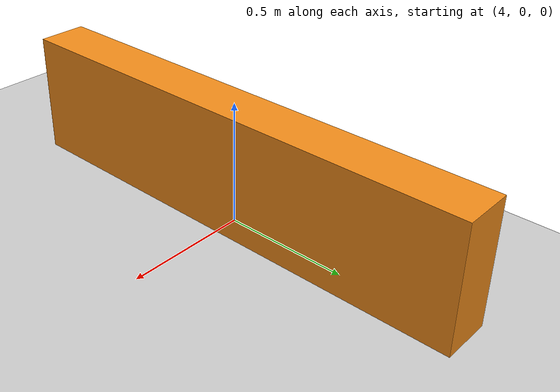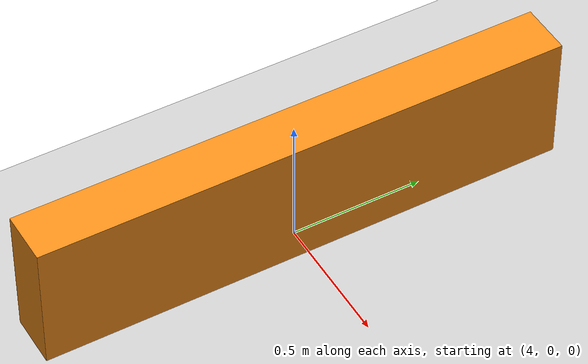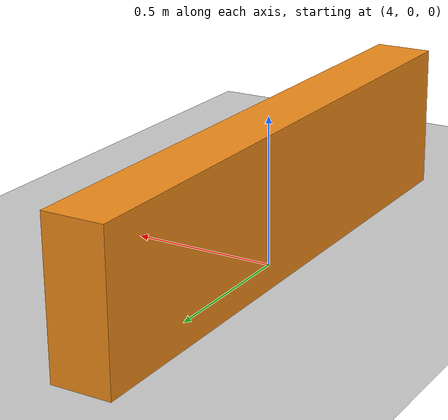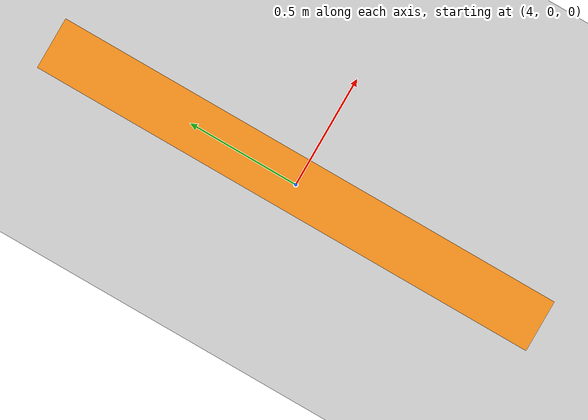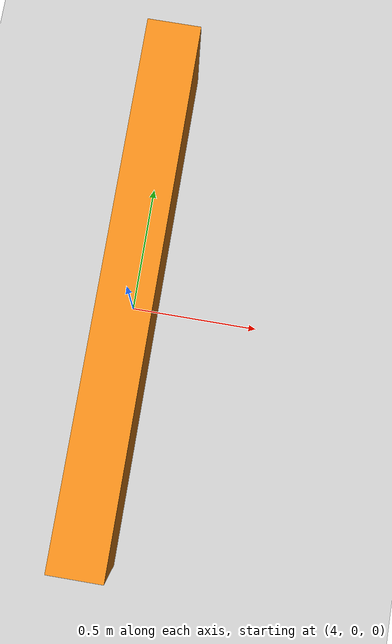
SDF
<?xml version="1.0"?>
<!--
  Simple Gazebo world for RC car simulation.
-->
<sdf version="1.6">
  <world name="rc_car_world">

    <!-- Gazebo Sim systems required for runtime services/topics -->
    <plugin
      filename="gz-sim-physics-system"
      name="gz::sim::systems::Physics" />
    <plugin
      filename="gz-sim-user-commands-system"
      name="gz::sim::systems::UserCommands" />
    <plugin
      filename="gz-sim-scene-broadcaster-system"
      name="gz::sim::systems::SceneBroadcaster" />
    <plugin
      filename="gz-sim-sensors-system"
      name="gz::sim::systems::Sensors">
      <render_engine>ogre2</render_engine>
    </plugin>

    <!-- Physics -->
    <physics name="default" type="ode">
      <max_step_size>0.001</max_step_size>
      <real_time_factor>1</real_time_factor>
      <real_time_update_rate>1000</real_time_update_rate>
    </physics>

    <!-- Lighting -->
    <light name="sun" type="directional">
      <cast_shadows>true</cast_shadows>
      <pose>0 0 10 0 0 0</pose>
      <diffuse>0.8 0.8 0.8 1</diffuse>
      <specular>0.2 0.2 0.2 1</specular>
      <direction>-0.5 0.1 -0.9</direction>
    </light>

    <!-- Ground plane -->
    <model name="ground_plane">
      <static>true</static>
      <link name="link">
        <collision name="collision">
          <geometry>
            <plane>
              <normal>0 0 1</normal>
              <size>100 100</size>
            </plane>
          </geometry>
          <surface>
            <friction>
              <ode>
                <mu>1.0</mu>
                <mu2>1.0</mu2>
              </ode>
            </friction>
          </surface>
        </collision>
        <visual name="visual">
          <cast_shadows>false</cast_shadows>
          <geometry>
            <plane>
              <normal>0 0 1</normal>
              <size>200 200</size>
            </plane>
          </geometry>
          <material>
            <script>
              <uri>file://media/materials/scripts/gazebo.material</uri>
              <name>Gazebo/Grey</name>
            </script>
          </material>
        </visual>
      </link>
    </model>

    <!-- Obstacle 1 – north wall -->
    <model name="obstacle_1">
      <static>true</static>
      <pose>4.0 0.0 0.25 0 0 0</pose>
      <link name="link">
        <collision name="collision">
          <geometry><box><size>0.2 2.0 0.5</size></box></geometry>
        </collision>
        <visual name="visual">
          <geometry><box><size>0.2 2.0 0.5</size></box></geometry>
          <material>
            <script>
              <uri>file://media/materials/scripts/gazebo.material</uri>
              <name>Gazebo/Orange</name>
            </script>
          </material>
        </visual>
      </link>
    </model>

  </world>
</sdf>
